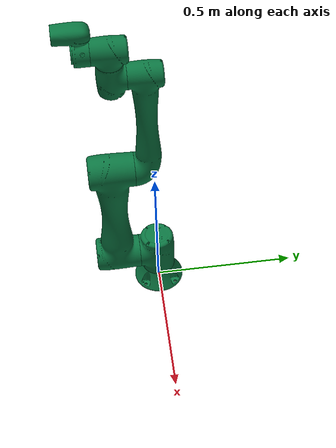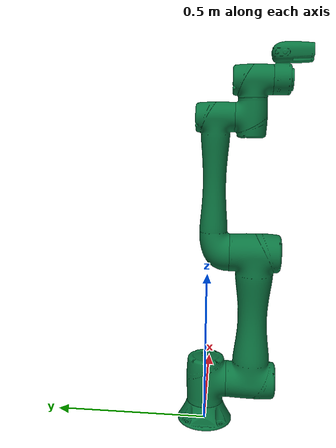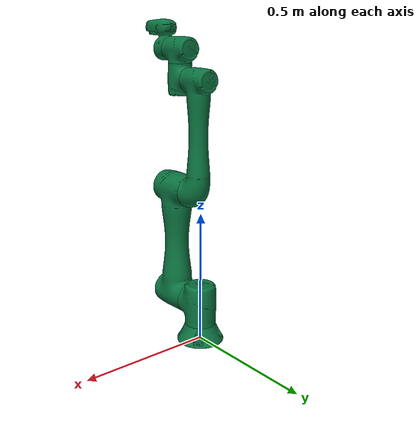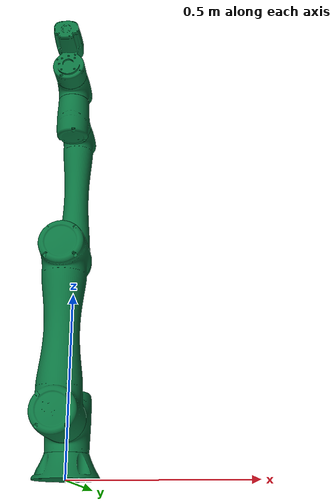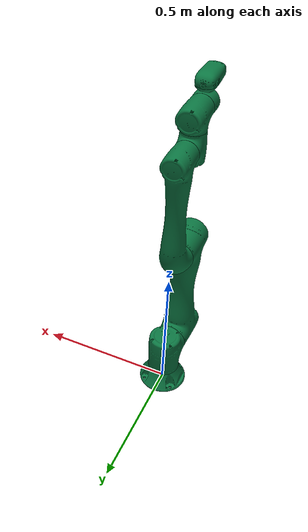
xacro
<?xml version="1.0"?>
<robot xmlns:xacro="http://www.ros.org/wiki/xacro" name="tm5-900">
  <!-- ARGUMENTS -->
  <xacro:arg name="ns" default="" />
  <xacro:arg name="prefix" default="" />
  <xacro:arg name="color" default="none" />
  <xacro:arg name="trans_hw_iface" default="hardware_interface/PositionJointInterface" />

  <xacro:include filename="$(find tm_description)/xacro/macro.gazebo.xacro" />
  <xacro:include filename="$(find tm_description)/xacro/macro.transmission.xacro" />
  <xacro:include filename="$(find tm_description)/xacro/macro.materials.xacro" />

  <!-- Import TM Cobot: tm5-900 robot description file -->
  <!-- If the user want to use newly generated named robot description file as user_defined.urdf.xacro, -->
  <!-- you must modify 'macro.tm5-900-nominal.urdf.xacro' to 'user_defined.urdf.xacro'  -->
  <xacro:include filename="$(find tm_description)/xacro/macro.tm5-900-nominal.urdf.xacro" />

  <xacro:tmr_gazebo ns="$(arg ns)" prefix="$(arg prefix)" />
  <xacro:tmr_transmission prefix="$(arg prefix)" hw_iface="$(arg trans_hw_iface)" />

  <!-- Import TM Cobot: mesh.color.default -->
  <xacro:property name="color" value="$(arg color)"/>
  <xacro:if value="${color == 'none'}">
    <xacro:tm5-900 ns="$(arg ns)" prefix="$(arg prefix)" color="emeraldgreen" format="obj"/>
  </xacro:if>

  <!-- Import TM Cobot: mesh.color.specific-->
  <xacro:unless value="${color == 'none'}">
    <xacro:tm5-900 ns="$(arg ns)" prefix="$(arg prefix)" color="${color}" format="obj" />
  </xacro:unless>

</robot>

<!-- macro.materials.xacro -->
<robot xmlns:xacro="http://www.ros.org/wiki/xacro">
  <xacro:include filename="$(find tm_description)/xacro/macro.colors.xacro"/>

  <xacro:macro name="tm_materials">
    <material name="default">
      <color rgba="${color_default}" />
    </material>

    <material name="red">
      <color rgba="${color_red}" />
    </material>

    <material name="orange">
      <color rgba="${color_orange}" />
    </material>

    <material name="yellow">
      <color rgba="${color_yellow}" />
    </material>

    <material name="green">
      <color rgba="${color_green}" />
    </material>

    <material name="blue">
      <color rgba="${color_blue}" />
    </material>

    <material name="indigo">
      <color rgba="${color_indigo}" />
    </material>

    <material name="violet">
      <color rgba="${color_violet}" />
    </material>

    <material name="black">
      <color rgba="${color_black}" />
    </material>

    <material name="darkolive">
      <color rgba="${color_darkolive}" />
    </material>

    <material name="pebblegray">
      <color rgba="${color_pebblegray}" />
    </material>

    <material name="grey">
      <color rgba="${color_grey}" />
    </material>

    <material name="whitegraphite">
      <color rgba="${color_whitegraphite}" />
    </material>

    <material name="graywhite">
      <color rgba="${color_graywhite}" />
    </material>

    <material name="purewhite">
      <color rgba="${color_purewhite}" />
    </material>

    <material name="white">
      <color rgba="${color_white}" />
    </material>

    <material name="gold">
      <color rgba="${color_gold}" />
    </material>

    <material name="iron">
      <color rgba="${color_iron}" />
    </material>

    <material name="emeraldgreen">
      <color rgba="${color_emeraldgreen}" />
    </material>
  </xacro:macro>

  <xacro:macro name="tm_material_default">
    <material name="">
      <color rgba="${color_default}" />
    </material>
  </xacro:macro>

  <xacro:macro name="tm_material_red">
    <material name="">
      <color rgba="${color_red}" />
    </material>
  </xacro:macro>

  <xacro:macro name="tm_material_orange">
    <material name="">
      <color rgba="${color_orange}" />
    </material>
  </xacro:macro>

  <xacro:macro name="tm_material_yellow">
    <material name="">
      <color rgba="${color_yellow}" />
    </material>
  </xacro:macro>

  <xacro:macro name="tm_material_green">
    <material name="">
      <color rgba="${color_green}" />
    </material>
  </xacro:macro>

  <xacro:macro name="tm_material_blue">
    <material name="">
      <color rgba="${color_blue}" />
    </material>
  </xacro:macro>

  <xacro:macro name="tm_material_indigo">
    <material name="">
      <color rgba="${color_indigo}" />
    </material>
  </xacro:macro>

  <xacro:macro name="tm_material_violet">
    <material name="">
      <color rgba="${color_violet}" />
    </material>
  </xacro:macro>

  <xacro:macro name="tm_material_black">
    <material name="">
      <color rgba="${color_black}" />
    </material>
  </xacro:macro>

  <xacro:macro name="tm_material_darkolive">
    <material name="">
      <color rgba="${color_darkolive}" />
    </material>
  </xacro:macro>

  <xacro:macro name="tm_material_pebblegray">
    <material name="">
      <color rgba="${color_pebblegray}" />
    </material>
  </xacro:macro>

  <xacro:macro name="tm_material_grey">
    <material name="">
      <color rgba="${color_grey}" />
    </material>
  </xacro:macro>

  <xacro:macro name="tm_material_whitegraphite">
    <material name="">
      <color rgba="${color_whitegraphite}" />
    </material>
  </xacro:macro>

  <xacro:macro name="tm_material_graywhite">
    <material name="">
      <color rgba="${color_graywhite}" />
    </material>
  </xacro:macro>

  <xacro:macro name="tm_material_purewhite">
    <material name="">
      <color rgba="${color_purewhite}" />
    </material>
  </xacro:macro>

  <xacro:macro name="tm_material_white}">
    <material name="">
      <color rgba="${color_white}" />
    </material>
  </xacro:macro>

  <xacro:macro name="tm_material_gold">
    <material name="">
      <color rgba="${color_gold}" />
    </material>
  </xacro:macro>

  <xacro:macro name="tm_material_iron">
    <material name="">
      <color rgba="${color_iron}" />
    </material>
  </xacro:macro>

  <xacro:macro name="tm_material_emeraldgreen">
    <material name="">
      <color rgba="${color_emeraldgreen}" />
    </material>
  </xacro:macro>
</robot>

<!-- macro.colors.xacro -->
<robot xmlns:xacro="http://www.ros.org/wiki/xacro">

  <!-- tm_material_colors -->
  <xacro:property name="color_default" value="0.695 0.743 0.790 1.0" />

  <xacro:property name="color_red" value="0.950 0.000 0.000 1.0" />

  <xacro:property name="color_orange" value="1.000 0.500 0.000 1.0" />

  <xacro:property name="color_yellow" value="1.000 1.000 0.000 1.0" />

  <xacro:property name="color_green" value="0.000 1.000 0.000 1.0" />

  <xacro:property name="color_blue" value="0.000 0.000 1.000 1.0" />

  <xacro:property name="color_indigo" value="0.300 0.300 0.600 1.0" />

  <xacro:property name="color_violet" value="0.600 0.000 1.000 1.0" />

  <xacro:property name="color_black" value="0.000 0.000 0.000 1.0" />

  <xacro:property name="color_darkolive" value="0.300 0.300 0.250 1.0" />

  <xacro:property name="color_pebblegray" value="0.706 0.690 0.631 1.0" />

  <xacro:property name="color_grey" value="0.750 0.750 0.750 1.0" />

  <xacro:property name="color_whitegraphite" value="0.773 0.780 0.769 1.0" />

  <xacro:property name="color_graywhite" value="0.839 0.835 0.792 1.0" />

  <xacro:property name="color_purewhite" value="0.941 0.929 0.882 1.0" />

  <xacro:property name="color_white" value="0.950 0.950 0.950 1.0" />

  <xacro:property name="color_gold" value="0.831 0.686 0.218 1.0" />

  <xacro:property name="color_iron" value="0.380 0.400 0.417 1.0" />

  <xacro:property name="color_emeraldgreen" value="0.040 0.455 0.251 1.0" />

</robot>

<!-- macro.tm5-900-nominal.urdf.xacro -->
<robot xmlns:xacro="http://www.ros.org/wiki/xacro">

  <xacro:include filename="$(find tm_description)/xacro/macro.inertial.xacro" />

  <xacro:macro name="tm5-900" params="ns prefix color format
    joint_1_lower_limit:=${radians(-270)}    joint_1_upper_limit:=${radians(270)}
    joint_2_lower_limit:=${radians(-180)}    joint_2_upper_limit:=${radians(180)}
    joint_3_lower_limit:=${radians(-155)}    joint_3_upper_limit:=${radians(155)}
    joint_4_lower_limit:=${radians(-180)}    joint_4_upper_limit:=${radians(180)}
    joint_5_lower_limit:=${radians(-180)}    joint_5_upper_limit:=${radians(180)}
    joint_6_lower_limit:=${radians(-270)}    joint_6_upper_limit:=${radians(270)}
    joint_1_velocity_limit:=${radians(180)}
    joint_2_velocity_limit:=${radians(180)}
    joint_3_velocity_limit:=${radians(180)}
    joint_4_velocity_limit:=${radians(225)}
    joint_5_velocity_limit:=${radians(225)}
    joint_6_velocity_limit:=${radians(225)}
    joint_1_effort_limit:=${157}
    joint_2_effort_limit:=${157}
    joint_3_effort_limit:=${157}
    joint_4_effort_limit:=${43}
    joint_5_effort_limit:=${43}
    joint_6_effort_limit:=${43}
    safety_limits:=false safety_pos_margin:=0.15
    safety_k_position:=20">

    <xacro:property name="damping_factor" value="0.000"/>
    <xacro:property name="d1" value="${damping_factor*0.1}"/>
    <xacro:property name="d2" value="${damping_factor*0.1}"/>
    <xacro:property name="d3" value="${damping_factor*0.1}"/>
    <xacro:property name="d4" value="${damping_factor*0.1}"/>
    <xacro:property name="d5" value="${damping_factor*0.1}"/>
    <xacro:property name="d6" value="${damping_factor*0.1}"/>

    <xacro:property name="friction_factor" value="0.000"/>
    <xacro:property name="f1" value="${friction_factor*0.1}"/>
    <xacro:property name="f2" value="${friction_factor*0.1}"/>
    <xacro:property name="f3" value="${friction_factor*0.1}"/>
    <xacro:property name="f4" value="${friction_factor*0.1}"/>
    <xacro:property name="f5" value="${friction_factor*0.1}"/>
    <xacro:property name="f6" value="${friction_factor*0.1}"/>

    <!-- Inertia parameters -->
    <xacro:property name="mass_0" value="1.000" />
    <xacro:property name="mass_1" value="4.032" />
    <xacro:property name="mass_2" value="8.897" />
    <xacro:property name="mass_3" value="2.443" />
    <xacro:property name="mass_4" value="1.576" />
    <xacro:property name="mass_5" value="1.576" />
    <xacro:property name="mass_6" value="0.65" />

    <xacro:property name="unit_factor" value="0.000001"/>
    <xacro:property name="ixx_1" value="${8800.119*unit_factor}" />
    <xacro:property name="ixx_2" value="${24459.295*unit_factor}" />
    <xacro:property name="ixx_3" value="${3632.988*unit_factor}" />
    <xacro:property name="ixx_4" value="${2058.405*unit_factor}" />
    <xacro:property name="ixx_5" value="${2058.405*unit_factor}" />
    <xacro:property name="ixx_6" value="${774.544*unit_factor}" />

    <xacro:property name="iyy_1" value="${11548.982*unit_factor}" />
    <xacro:property name="iyy_2" value="${205888.616*unit_factor}" />
    <xacro:property name="iyy_3" value="${36359.26*unit_factor}" />
    <xacro:property name="iyy_4" value="${2563.079*unit_factor}" />
    <xacro:property name="iyy_5" value="${2563.079*unit_factor}" />
    <xacro:property name="iyy_6" value="${1383.811*unit_factor}" />

    <xacro:property name="izz_1" value="${11970.081*unit_factor}" />
    <xacro:property name="izz_2" value="${212473.4246*unit_factor}" />
    <xacro:property name="izz_3" value="${36895.644*unit_factor}" />
    <xacro:property name="izz_4" value="${2643.21*unit_factor}" />
    <xacro:property name="izz_5" value="${2643.21*unit_factor}" />
    <xacro:property name="izz_6" value="${1559.496*unit_factor}" />

    <xacro:property name="specified_color_arms" default="false" />
    <xacro:property name="prefix_monochrome_command" default="true" />

    <!-- If other applications conflict with the color definition of URDF, try disable_prefix_color to close it -->
    <xacro:property name="disable_prefix_color" default="false" />
    <xacro:if value="${disable_prefix_color}">
      <prefix_monochrome_command value="false"/>
    </xacro:if>
    <xacro:if value="${format == 'stl'}">
      <specified_color_arms value="true"/>
      <prefix_monochrome_command value="false"/>
    </xacro:if>
    <xacro:if value="${prefix_monochrome_command}">
      <xacro:tm_materials/>
    </xacro:if>

<!--LinkDescription-->
  <link name="${prefix}link_0">
    <visual>
      <geometry>
        <mesh filename="package://tm_description/meshes/tm5-900/visual/tm5-base.${format}" />
      </geometry>
      <xacro:if value="${specified_color_arms}">
        <xacro:tm_material_whitegraphite />
      </xacro:if>
      <xacro:if value="${prefix_monochrome_command}">
        <material name="${color}" />
      </xacro:if>
    </visual>
    <collision>
      <geometry>
        <mesh filename="package://tm_description/meshes/tm5-900/collision/tm5-base_c.stl" />
      </geometry>
    </collision>
<!--inertial-->
    <xacro:cylinder_inertial_z radius="0.06" length="0.05" mass="${mass_0}">
      <origin rpy="0.000000 0.000000 0.000000" xyz="0.000000 0.000000 0.000000" />
    </xacro:cylinder_inertial_z>
  </link>
  <joint name="${prefix}joint_1" type="revolute">
    <parent link="${prefix}link_0" />
    <child link="${prefix}link_1" />
    <origin rpy="0.000000 -0.000000 0.000000" xyz="0.000000 0.000000 0.145200" />
    <axis xyz="0 0 1" />
<!--limit-->
    <limit lower="${joint_1_lower_limit}" upper="${joint_1_upper_limit}" velocity="${joint_1_velocity_limit}" effort="${joint_1_effort_limit}" />
    <xacro:if value="${safety_limits}">
      <safety_controller soft_lower_limit="${joint_1_lower_limit + safety_pos_margin}" soft_upper_limit="${joint_1_upper_limit - safety_pos_margin}" k_position="${safety_k_position}" k_velocity="0.0" />
    </xacro:if>
    <dynamics damping="${d1}" friction="${f1}" />
  </joint>
  <link name="${prefix}link_1">
    <visual>
      <geometry>
        <mesh filename="package://tm_description/meshes/tm5-900/visual/tmr_400w_01.${format}" />
      </geometry>
      <xacro:if value="${specified_color_arms}">
        <xacro:tm_material_darkolive />
      </xacro:if>
      <xacro:if value="${prefix_monochrome_command}">
        <material name="${color}" />
      </xacro:if>
    </visual>
    <collision>
      <geometry>
        <mesh filename="package://tm_description/meshes/tm5-900/collision/tmr_400w_01_c.stl" />
      </geometry>
    </collision>
    <inertial>
      <origin rpy="0.000000 0.000000 0.000000" xyz="0.000000 0.000000 0.000000" />
      <mass value="${mass_1}" />
      <inertia ixx="${ixx_1}" ixy="0.000000" ixz="0.000000" iyy="${iyy_1}" iyz="0.000000" izz="${izz_1}" />
    </inertial>
  </link>
  <joint name="${prefix}joint_2" type="revolute">
    <parent link="${prefix}link_1" />
    <child link="${prefix}link_2" />
    <origin rpy="-1.570796 -1.570796 0.000000" xyz="0.000000 0.000000 0.000000" />
    <axis xyz="0 0 1" />
<!--limit-->
    <limit lower="${joint_2_lower_limit}" upper="${joint_2_upper_limit}" velocity="${joint_2_velocity_limit}" effort="${joint_2_effort_limit}" />
    <xacro:if value="${safety_limits}">
      <safety_controller soft_lower_limit="${joint_2_lower_limit + safety_pos_margin}" soft_upper_limit="${joint_2_upper_limit - safety_pos_margin}" k_position="${safety_k_position}" k_velocity="0.0" />
    </xacro:if>
    <dynamics damping="${d2}" friction="${f2}" />
  </joint>
  <link name="${prefix}link_2">
    <visual>
      <geometry>
        <mesh filename="package://tm_description/meshes/tm5-900/visual/tm5-900_arm1.${format}" />
      </geometry>
      <xacro:if value="${specified_color_arms}">
        <xacro:tm_material_darkolive />
      </xacro:if>
      <xacro:if value="${prefix_monochrome_command}">
        <material name="${color}" />
      </xacro:if>
    </visual>
    <collision>
      <geometry>
        <mesh filename="package://tm_description/meshes/tm5-900/collision/tm5-900_arm1_c.stl" />
      </geometry>
    </collision>
    <inertial>
      <origin rpy="0.000000 0.000000 0.000000" xyz="0.000000 0.000000 0.000000" />
      <mass value="${mass_2}" />
      <inertia ixx="${ixx_2}" ixy="0.000000" ixz="0.000000" iyy="${iyy_2}" iyz="0.000000" izz="${izz_2}" />
    </inertial>
  </link>
  <joint name="${prefix}joint_3" type="revolute">
    <parent link="${prefix}link_2" />
    <child link="${prefix}link_3" />
    <origin rpy="0.000000 -0.000000 0.000000" xyz="0.429000 0.000000 0.000000" />
    <axis xyz="0 0 1" />
<!--limit-->
    <limit lower="${joint_3_lower_limit}" upper="${joint_3_upper_limit}" velocity="${joint_3_velocity_limit}" effort="${joint_3_effort_limit}" />
    <xacro:if value="${safety_limits}">
      <safety_controller soft_lower_limit="${joint_3_lower_limit + safety_pos_margin}" soft_upper_limit="${joint_3_upper_limit - safety_pos_margin}" k_position="${safety_k_position}" k_velocity="0.0" />
    </xacro:if>
    <dynamics damping="${d3}" friction="${f3}" />
  </joint>
  <link name="${prefix}link_3">
    <visual>
      <geometry>
        <mesh filename="package://tm_description/meshes/tm5-900/visual/tm5-900_arm2.${format}" />
      </geometry>
      <xacro:if value="${specified_color_arms}">
        <xacro:tm_material_gold />
      </xacro:if>
      <xacro:if value="${prefix_monochrome_command}">
        <material name="${color}" />
      </xacro:if>
    </visual>
    <collision>
      <geometry>
        <mesh filename="package://tm_description/meshes/tm5-900/collision/tm5-900_arm2_c.stl" />
      </geometry>
    </collision>
    <inertial>
      <origin rpy="0.000000 0.000000 0.000000" xyz="0.000000 0.000000 0.000000" />
      <mass value="${mass_3}" />
      <inertia ixx="${ixx_3}" ixy="0.000000" ixz="0.000000" iyy="${iyy_3}" iyz="0.000000" izz="${izz_3}" />
    </inertial>
  </link>
  <joint name="${prefix}joint_4" type="revolute">
    <parent link="${prefix}link_3" />
    <child link="${prefix}link_4" />
    <origin rpy="0.000000 -0.000000 1.570796" xyz="0.411500 0.000000 -0.122300" />
    <axis xyz="0 0 1" />
<!--limit-->
    <limit lower="${joint_4_lower_limit}" upper="${joint_4_upper_limit}" velocity="${joint_4_velocity_limit}" effort="${joint_4_effort_limit}" />
    <xacro:if value="${safety_limits}">
      <safety_controller soft_lower_limit="${joint_4_lower_limit + safety_pos_margin}" soft_upper_limit="${joint_4_upper_limit - safety_pos_margin}" k_position="${safety_k_position}" k_velocity="0.0" />
    </xacro:if>
    <dynamics damping="${d4}" friction="${f4}" />
  </joint>
  <link name="${prefix}link_4">
    <visual>
      <geometry>
        <mesh filename="package://tm_description/meshes/tm5-900/visual/tmr_100w_01.${format}" />
      </geometry>
      <xacro:if value="${specified_color_arms}">
        <xacro:tm_material_darkolive />
      </xacro:if>
      <xacro:if value="${prefix_monochrome_command}">
        <material name="${color}" />
      </xacro:if>
    </visual>
    <collision>
      <geometry>
        <mesh filename="package://tm_description/meshes/tm5-900/collision/tmr_100w_01_c.stl" />
      </geometry>
    </collision>
    <inertial>
      <origin rpy="0.000000 0.000000 0.000000" xyz="0.000000 0.000000 0.000000" />
      <mass value="${mass_4}" />
      <inertia ixx="${ixx_4}" ixy="0.000000" ixz="0.000000" iyy="${iyy_4}" iyz="0.000000" izz="${izz_4}" />
    </inertial>
  </link>
  <joint name="${prefix}joint_5" type="revolute">
    <parent link="${prefix}link_4" />
    <child link="${prefix}link_5" />
    <origin rpy="1.570796 -0.000000 0.000000" xyz="0.000000 -0.106000 0.000000" />
    <axis xyz="0 0 1" />
<!--limit-->
    <limit lower="${joint_5_lower_limit}" upper="${joint_5_upper_limit}" velocity="${joint_5_velocity_limit}" effort="${joint_5_effort_limit}" />
    <xacro:if value="${safety_limits}">
      <safety_controller soft_lower_limit="${joint_5_lower_limit + safety_pos_margin}" soft_upper_limit="${joint_5_upper_limit - safety_pos_margin}" k_position="${safety_k_position}" k_velocity="0.0" />
    </xacro:if>
    <dynamics damping="${d5}" friction="${f5}" />
  </joint>
  <link name="${prefix}link_5">
    <visual>
      <geometry>
        <mesh filename="package://tm_description/meshes/tm5-900/visual/tmr_100w_02.${format}" />
      </geometry>
      <xacro:if value="${specified_color_arms}">
        <xacro:tm_material_darkolive />
      </xacro:if>
      <xacro:if value="${prefix_monochrome_command}">
        <material name="${color}" />
      </xacro:if>
    </visual>
    <collision>
      <geometry>
        <mesh filename="package://tm_description/meshes/tm5-900/collision/tmr_100w_02_c.stl" />
      </geometry>
    </collision>
    <inertial>
      <origin rpy="0.000000 0.000000 0.000000" xyz="0.000000 0.000000 0.000000" />
      <mass value="${mass_5}" />
      <inertia ixx="${ixx_5}" ixy="0.000000" ixz="0.000000" iyy="${iyy_5}" iyz="0.000000" izz="${izz_5}" />
    </inertial>
  </link>
  <joint name="${prefix}joint_6" type="revolute">
    <parent link="${prefix}link_5" />
    <child link="${prefix}link_6" />
    <origin rpy="1.570796 -0.000000 0.000000" xyz="0.000000 -0.113150 0.000000" />
    <axis xyz="0 0 1" />
<!--limit-->
    <limit lower="${joint_6_lower_limit}" upper="${joint_6_upper_limit}" velocity="${joint_6_velocity_limit}" effort="${joint_6_effort_limit}" />
    <xacro:if value="${safety_limits}">
      <safety_controller soft_lower_limit="${joint_6_lower_limit + safety_pos_margin}" soft_upper_limit="${joint_6_upper_limit - safety_pos_margin}" k_position="${safety_k_position}" k_velocity="0.0" />
    </xacro:if>
    <dynamics damping="${d6}" friction="${f6}" />
  </joint>
  <link name="${prefix}link_6">
    <visual>
      <geometry>
        <mesh filename="package://tm_description/meshes/tm5-900/visual/tmr_ee.${format}" />
      </geometry>
      <xacro:if value="${specified_color_arms}">
        <xacro:tm_material_purewhite />
      </xacro:if>
      <xacro:if value="${prefix_monochrome_command}">
        <material name="${color}" />
      </xacro:if>
    </visual>
    <collision>
      <geometry>
        <mesh filename="package://tm_description/meshes/tm5-900/collision/tmr_ee_c.stl" />
      </geometry>
    </collision>
    <inertial>
      <origin rpy="0.000000 0.000000 0.000000" xyz="0.000000 0.000000 0.000000" />
      <mass value="${mass_6}" />
      <inertia ixx="${ixx_6}" ixy="0.000000" ixz="0.000000" iyy="${iyy_6}" iyz="0.000000" izz="${izz_6}" />
    </inertial>
  </link>
  <link name="${prefix}base" />
  <joint name="${prefix}base_fixed_joint" type="fixed">
    <parent link="${prefix}base" />
    <child link="${prefix}link_0" />
    <origin rpy="0.000000 0.000000 0.000000" xyz="0.000000 0.000000 0.000000" />
  </joint>
  <link name="${prefix}flange" />
  <joint name="${prefix}flange_fixed_joint" type="fixed">
    <parent link="${prefix}link_6" />
    <child link="${prefix}flange" />
    <origin rpy="0.000000 0.000000 0.000000" xyz="0.000000 0.000000 0.000000" />
  </joint>
<!--LinkDescription-->

  </xacro:macro>

</robot>

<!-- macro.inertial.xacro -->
<robot xmlns:xacro="http://www.ros.org/wiki/xacro">
  <xacro:macro name="cylinder_inertial_x" params="radius length mass *origin">
    <inertial>
      <mass value="${mass}" />
      <xacro:insert_block name="origin" />
      <inertia
        ixx="${0.5 * mass * radius * radius}" ixy="0.0" ixz="0.0"
        iyy="${0.0833333 * mass * (3 * radius * radius + length * length)}" iyz="0.0"
        izz="${0.0833333 * mass * (3 * radius * radius + length * length)}" />
    </inertial>
  </xacro:macro>
  <xacro:macro name="cylinder_inertial_y" params="radius length mass *origin">
    <inertial>
      <mass value="${mass}" />
      <xacro:insert_block name="origin" />
      <inertia
        ixx="${0.0833333 * mass * (3 * radius * radius + length * length)}" ixy="0.0" ixz="0.0"
        iyy="${0.5 * mass * radius * radius}" iyz="0.0"
        izz="${0.0833333 * mass * (3 * radius * radius + length * length)}" />
    </inertial>
  </xacro:macro>
  <xacro:macro name="cylinder_inertial_z" params="radius length mass *origin">
    <inertial>
      <mass value="${mass}" />
      <xacro:insert_block name="origin" />
      <inertia
        ixx="${0.0833333 * mass * (3 * radius * radius + length * length)}" ixy="0.0" ixz="0.0"
        iyy="${0.0833333 * mass * (3 * radius * radius + length * length)}" iyz="0.0"
        izz="${0.5 * mass * radius * radius}" />
    </inertial>
  </xacro:macro>
    <xacro:macro name="cuboid_inertial" params="width height depth mass *origin">
    <inertial>
      <mass value="${mass}" />
      <xacro:insert_block name="origin" />
      <inertia
        ixx="${mass * (height * height + depth * depth) / 12}" ixy="0.0" ixz="0.0"
        iyy="${mass * (width * width + height * height) / 12}" iyz="0.0"
        izz="${mass * (width * width + depth * depth) / 12}" />
    </inertial>
  </xacro:macro>
</robot>
